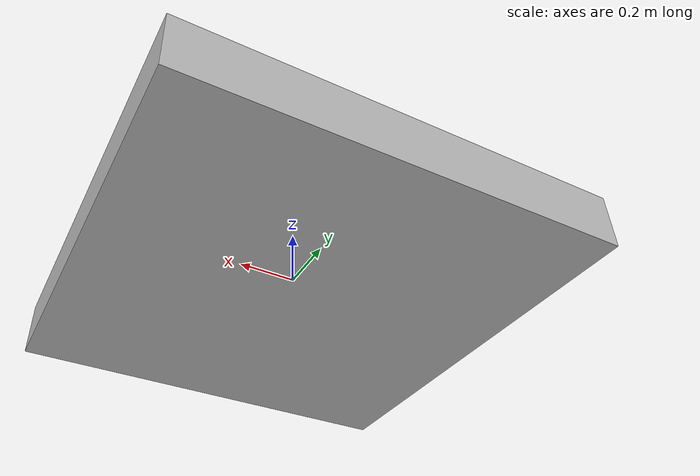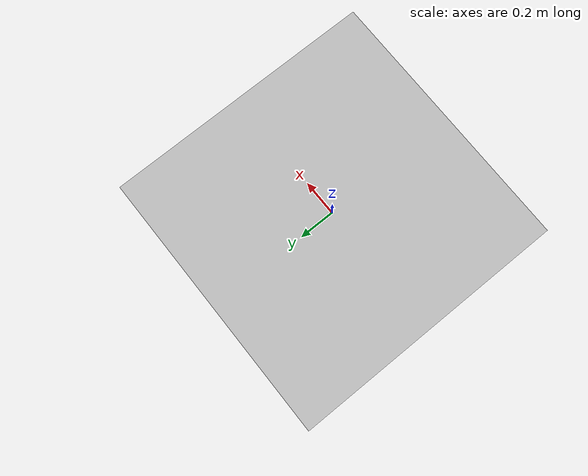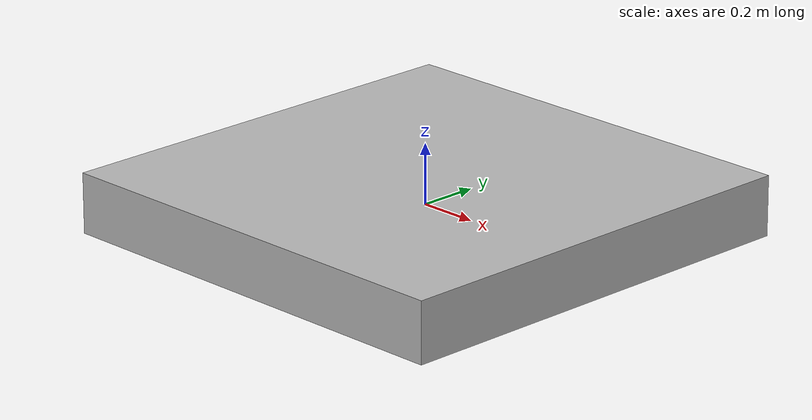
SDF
<?xml version="1.0" encoding="UTF-8"?>
<sdf version="1.5">
   <model name="marker_design2">
      <static>true</static>
      <link name="link">
         <collision name="collision">
            <geometry>
               <box>
                  <normal>0 0 0</normal>
                  <size>1.5 1.5 .2</size>
               </box>
            </geometry>
            <surface>
               <friction>
                  <ode>
                     <mu>100</mu>
                     <mu2>100</mu2>
                  </ode>
               </friction>
            </surface>
         </collision>
         <visual name="visual">
            <cast_shadows>false</cast_shadows>
            <geometry>
               <box>
                  <normal>0 0 0</normal>
                  <size>1.5 1.5 0.2</size>
               </box>
            </geometry>
            <material>
               <script>
                  <uri>model://marker_design2/materials/scripts/marker_design2.material</uri>
                  <uri>model://marker_design2/materials/textures/h_design.png</uri>
                  <name>marker_design2/Image</name>
               </script>
            </material>
         </visual>
      </link>
   </model>
</sdf>
